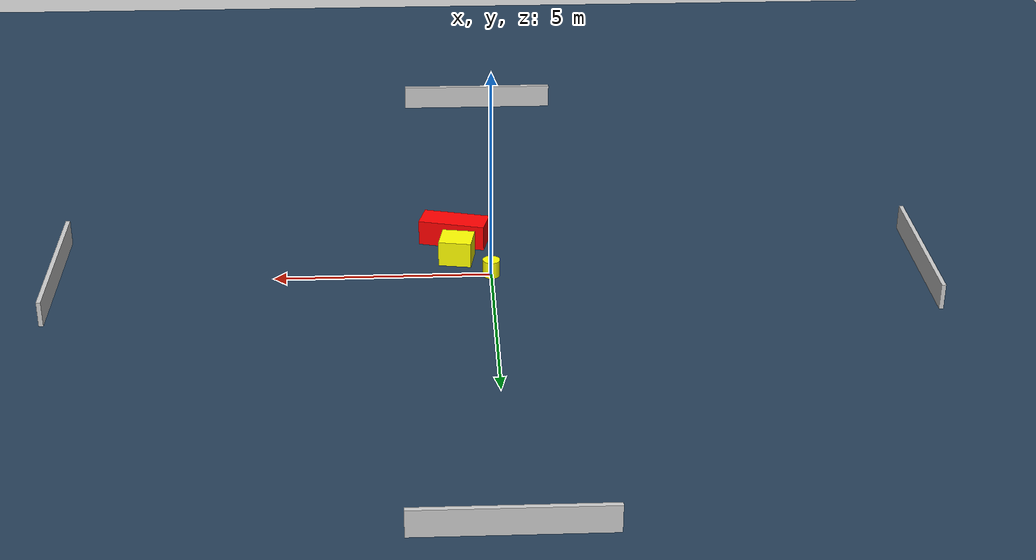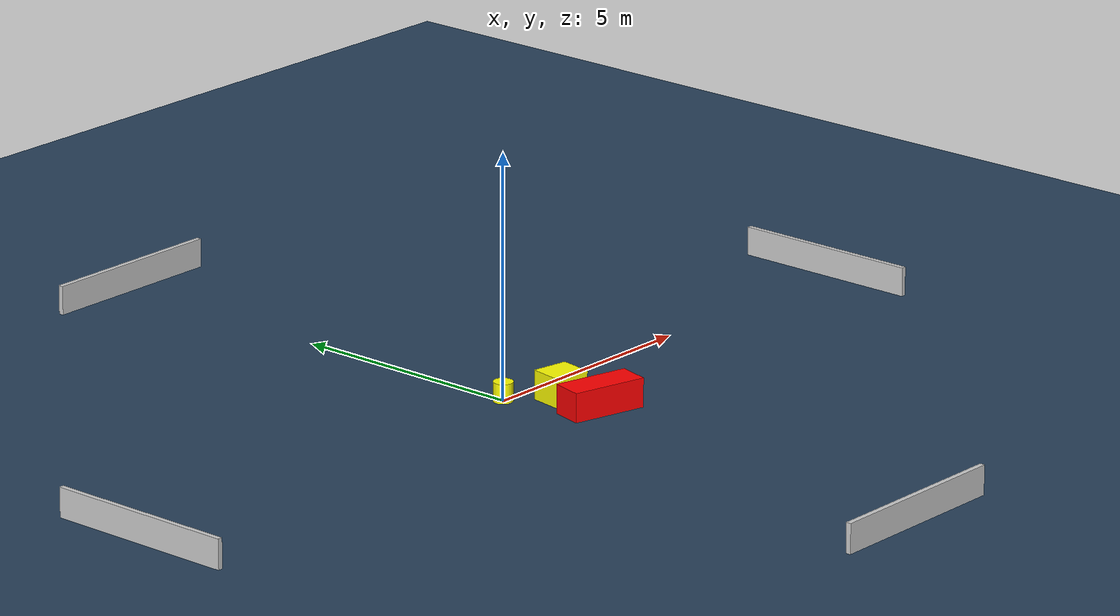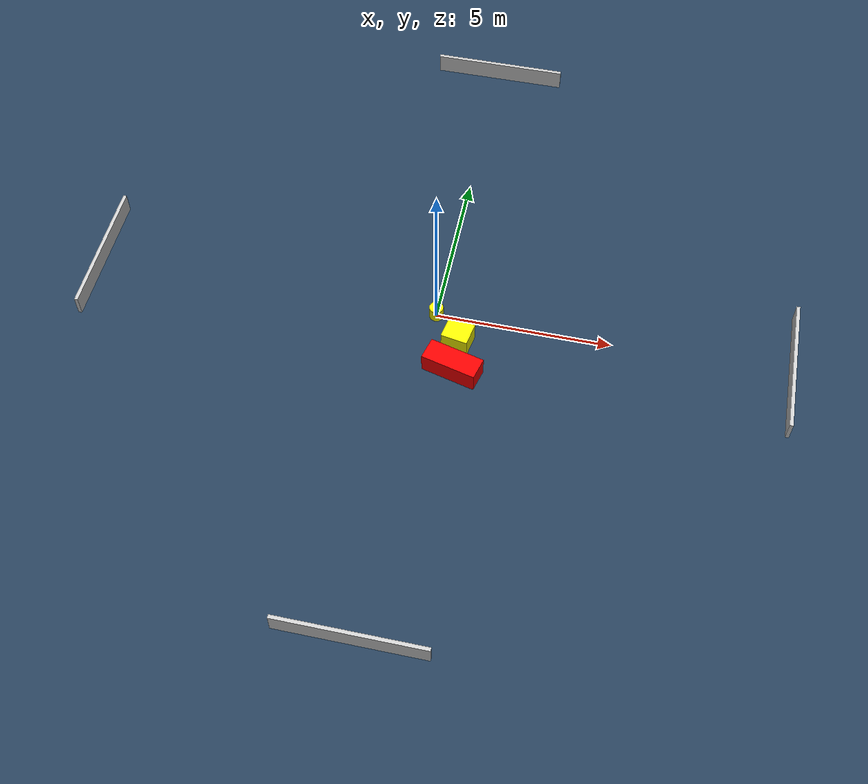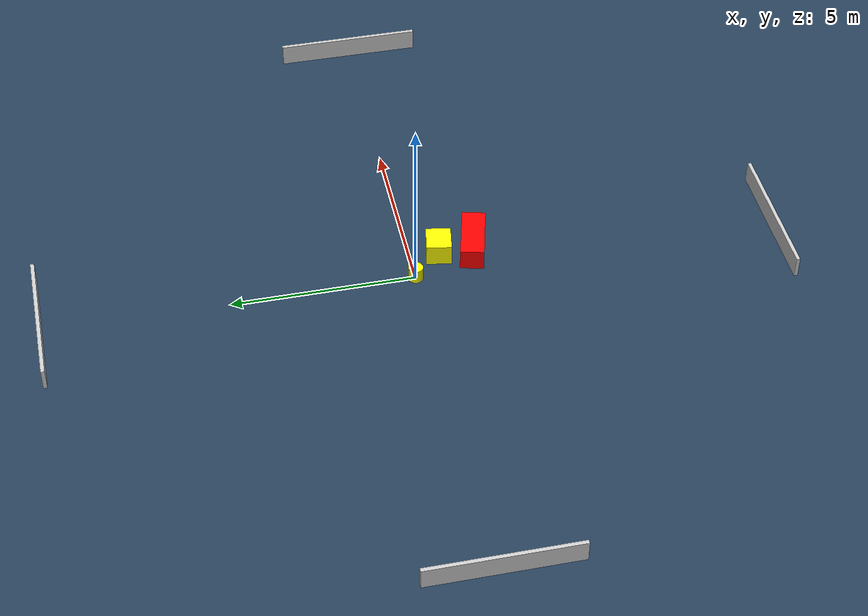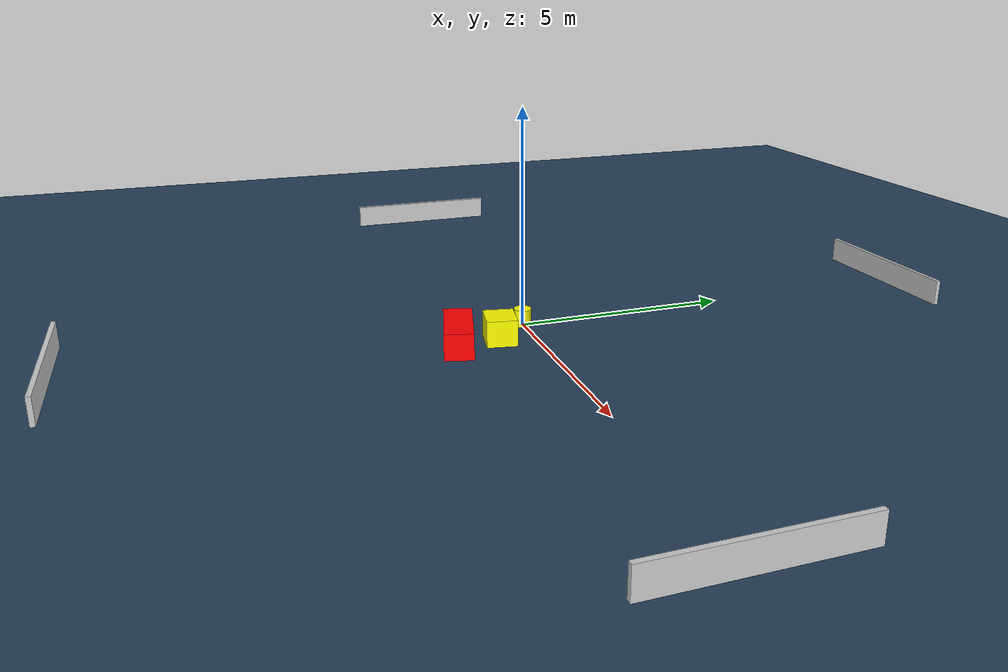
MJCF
<?xml version="1.0" ?>
<mujoco model="generated_environment">
  <option timestep="0.01" integrator="RK4" cone="elliptic"/>
  <default>
    <geom density="1"/>
  </default>
  <asset>
    <texture builtin="gradient" height="3072" name="skybox" rgb1="0.3 0.5 0.7" rgb2="0 0 0" type="skybox" width="512"/>
    <texture builtin="checker" height="300" name="groundplane" rgb1="0.2 0.3 0.4" rgb2="0.1 0.2 0.3" type="2d" width="300"/>
    <material name="groundplane" reflectance="0.2" texrepeat="5 5" texture="groundplane"/>
  </asset>
  <worldbody>
    <light dir="0 0 -1" directional="true" pos="0 0 1.5"/>
    <geom condim="3" friction="0.5 0.005 0.001" material="groundplane" name="floor" pos="0 0 0" size="0 0 0.05" type="plane"/>
    <body name="walls">
      <geom name="wall_1" condim="4" pos="-10.0 0.0 0.3" rgba="0.800000011920929 0.800000011920929 0.800000011920929 1.0" size="0.05 2.0 0.3" type="box"/>
      <geom name="wall_2" condim="4" pos="10.0 0.0 0.3" rgba="0.800000011920929 0.800000011920929 0.800000011920929 1.0" size="0.05 2.0 0.3" type="box"/>
      <geom name="wall_3" condim="4" pos="0.0 -10.0 0.3" rgba="0.800000011920929 0.800000011920929 0.800000011920929 1.0" size="2.0 0.05 0.3" type="box"/>
      <geom name="wall_4" condim="4" pos="0.0 10.0 0.3" rgba="0.800000011920929 0.800000011920929 0.800000011920929 1.0" size="2.0 0.05 0.3" type="box"/>
    </body>
    <body name="robot">
      <joint name="joint_x" type="slide" pos="0 0 0" axis="1 0 0"/>
      <joint name="joint_y" type="slide" pos="0 0 0" axis="0 1 0"/>
      <geom name="robot" type="cylinder" pos="0.0 0.0 0.2" size="0.2 0.2 0.0" mass="5.0" friction="1.0 0.005 0.0001" condim="4" rgba="1.0 1.0 0.0 1.0"/>
    </body>
    <body name="obstacle_1_movable">
      <geom name="obstacle_1_movable" condim="4" pos="0.7816572399682165 -0.7926562413063561 0.3" euler="0 0 80.2033429876401" friction="0.0 0.005 0.001" rgba="1.0 1.0 0.0 1.0" size="0.340863720537548 0.38146558791120233 0.3" type="box" mass="0.1"/>
      <joint type="free"/>
    </body>
    <body name="obstacle_2_static">
      <geom name="obstacle_2_static" condim="4" pos="0.8201061484093981 -1.7520951909728828 0.3" euler="0 0 75.60677659477736" friction="0.0 0.005 0.001" rgba="1.0 0.0 0.0 1.0" size="0.32239717402684165 0.7899668319065893 0.3" type="box"/>
    </body>
  </worldbody>
  <actuator>
    <motor name="actuator_x" joint="joint_x" gear="1" ctrlrange="-1 1"/>
    <motor name="actuator_y" joint="joint_y" gear="1" ctrlrange="-1 1"/>
  </actuator>
</mujoco>
